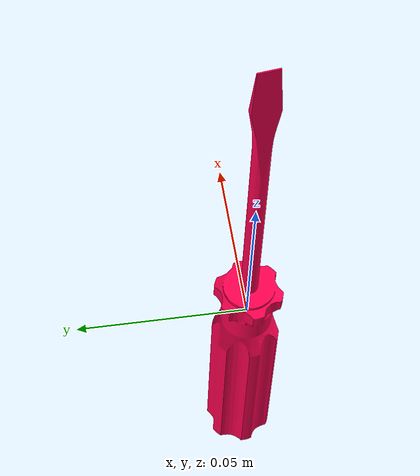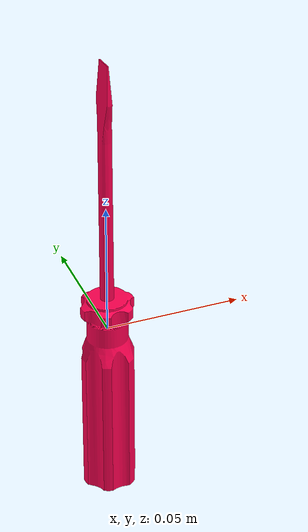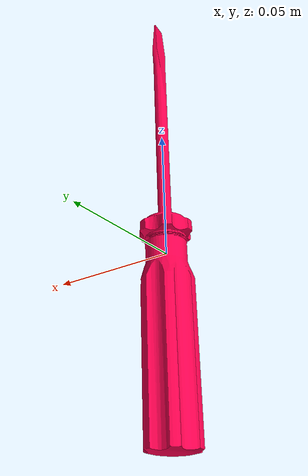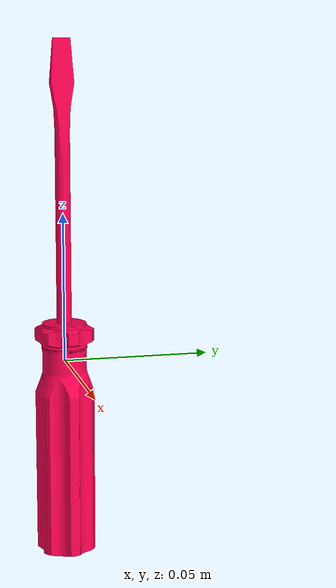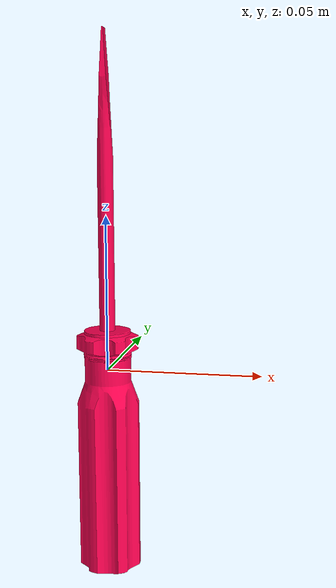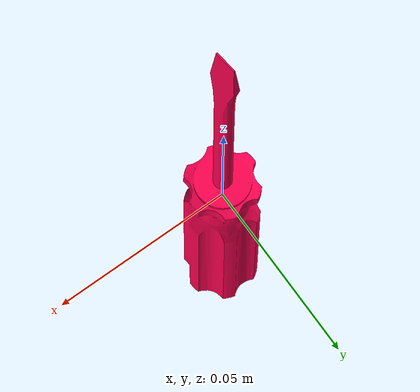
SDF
<?xml version="1.0"?>
<sdf version="1.7">
  <model name="flathead_screwdriver_bright">
    <pose>0 0 0 0 0 0</pose>
    <static>false</static>
    <link name="link">
      <!-- link frame = tool CoM; Z = long axis (+ toward tool end), X = forward, Y = Z x X -->
      <inertial>
        <pose>0 0 0 0 0 0</pose>
        <mass>0.037202</mass>
        <inertia>
          <ixx>8.113630e-05</ixx>
          <ixy>9.596102e-10</ixy>
          <ixz>6.521664e-10</ixz>
          <iyy>8.112703e-05</iyy>
          <iyz>-1.778740e-09</iyz>
          <izz>1.026147e-06</izz>
        </inertia>
      </inertial>
      <collision name="collision">
        <geometry>
          <mesh>
            <uri>model://flathead_screwdriver/meshes/flathead_screwdriver.dae</uri>
          </mesh>
        </geometry>
      </collision>
      <visual name="visual">
        <geometry>
          <mesh>
            <uri>model://flathead_screwdriver/meshes/flathead_screwdriver.dae</uri>
          </mesh>
        </geometry>
        <material>
          <ambient>0.450 0.000 0.142 1.0</ambient>
          <diffuse>1.000 0.000 0.315 1.0</diffuse>
          <specular>0.85 0.85 0.85 1.0</specular>
          <emissive>0 0 0 1.0</emissive>
        </material>
      </visual>
    </link>
  </model>
</sdf>
